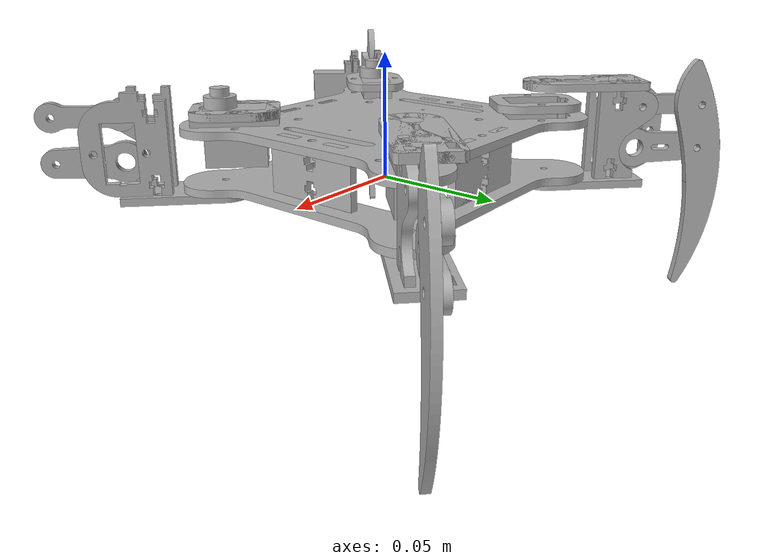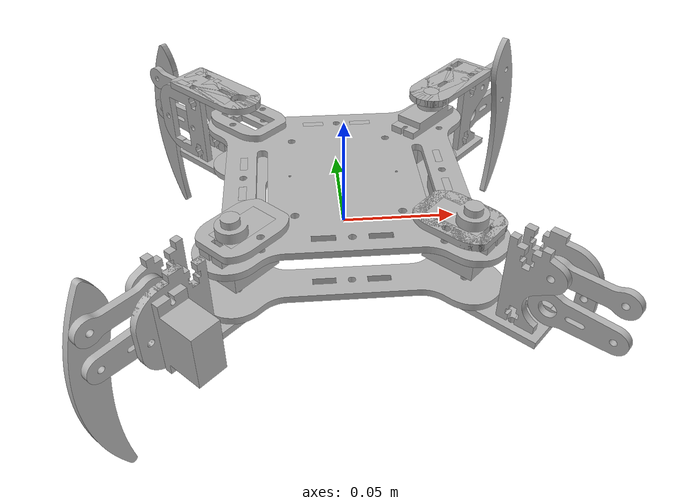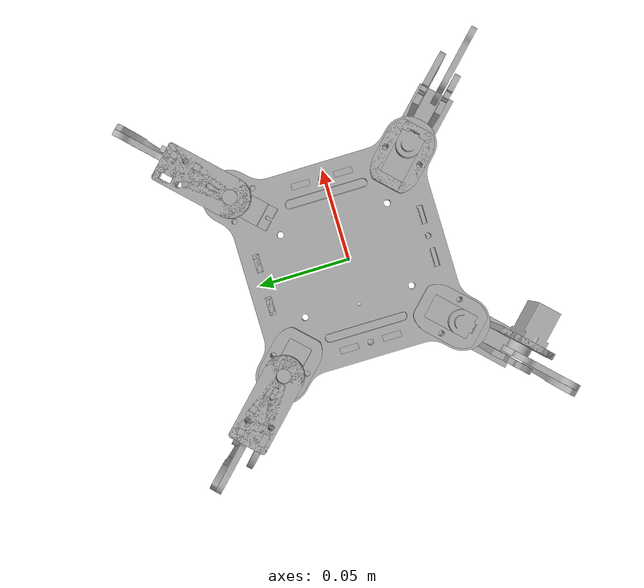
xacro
<?xml version="1.0" ?>
<robot name="quadruped" xmlns:xacro="http://www.ros.org/wiki/xacro">

<xacro:include filename="$(find quadruped_description)/urdf/materials.xacro" />
<xacro:include filename="$(find quadruped_description)/urdf/quadruped.trans" />
<xacro:include filename="$(find quadruped_description)/urdf/quadruped.gazebo" />

<link name="base_link">
  <inertial>
    <origin rpy="0 0 0" xyz="9.059146598001685e-07 0.0015934023756066099 0.049996155576494214"/>
    <mass value="0.1660035395213305"/>
    <inertia ixx="0.000257" ixy="0.0" ixz="0.0" iyy="0.000257" iyz="-0.0" izz="0.000514"/>
  </inertial>
  <visual>
    <origin rpy="0 0 0" xyz="0 0 0"/>
    <geometry>
      <mesh filename="package://quadruped_description/meshes/base_link.stl" scale="0.001 0.001 0.001"/>
    </geometry>
    <material name="silver"/>
  </visual>
  <collision>
    <origin rpy="0 0 0" xyz="0 0 0"/>
    <geometry>
      <mesh filename="package://quadruped_description/meshes/base_link.stl" scale="0.001 0.001 0.001"/>
    </geometry>
  </collision>
</link>

<link name="body_spacer_v1_1">
  <inertial>
    <origin rpy="0 0 0" xyz="-2.3037127760971997e-17 3.4442350579921843e-07 0.0019124056524901095"/>
    <mass value="0.01987438429408557"/>
    <inertia ixx="1e-06" ixy="0.0" ixz="0.0" iyy="4e-06" iyz="0.0" izz="3e-06"/>
  </inertial>
  <visual>
    <origin rpy="0 0 0" xyz="0.0 0.041434 -0.05924"/>
    <geometry>
      <mesh filename="package://quadruped_description/meshes/body_spacer_v1_1.stl" scale="0.001 0.001 0.001"/>
    </geometry>
    <material name="silver"/>
  </visual>
  <collision>
    <origin rpy="0 0 0" xyz="0.0 0.041434 -0.05924"/>
    <geometry>
      <mesh filename="package://quadruped_description/meshes/body_spacer_v1_1.stl" scale="0.001 0.001 0.001"/>
    </geometry>
  </collision>
</link>

<link name="body_spacer_v1_2">
  <inertial>
    <origin rpy="0 0 0" xyz="-1.762479051592436e-17 -1.555764942290372e-07 0.0019124056524901373"/>
    <mass value="0.01987438429408557"/>
    <inertia ixx="1e-06" ixy="0.0" ixz="0.0" iyy="4e-06" iyz="0.0" izz="3e-06"/>
  </inertial>
  <visual>
    <origin rpy="0 0 0" xyz="0.0 -0.044629 -0.05924"/>
    <geometry>
      <mesh filename="package://quadruped_description/meshes/body_spacer_v1_2.stl" scale="0.001 0.001 0.001"/>
    </geometry>
    <material name="silver"/>
  </visual>
  <collision>
    <origin rpy="0 0 0" xyz="0.0 -0.044629 -0.05924"/>
    <geometry>
      <mesh filename="package://quadruped_description/meshes/body_spacer_v1_2.stl" scale="0.001 0.001 0.001"/>
    </geometry>
  </collision>
</link>

<link name="body_spacer_v1_3">
  <inertial>
    <origin rpy="0 0 0" xyz="-2.500000000071889e-07 -4.055764942221315e-07 0.0019124056524901165"/>
    <mass value="0.01987438429408557"/>
    <inertia ixx="4e-06" ixy="0.0" ixz="-0.0" iyy="1e-06" iyz="-0.0" izz="3e-06"/>
  </inertial>
  <visual>
    <origin rpy="0 0 0" xyz="0.043031 -0.001598 -0.05924"/>
    <geometry>
      <mesh filename="package://quadruped_description/meshes/body_spacer_v1_3.stl" scale="0.001 0.001 0.001"/>
    </geometry>
    <material name="silver"/>
  </visual>
  <collision>
    <origin rpy="0 0 0" xyz="0.043031 -0.001598 -0.05924"/>
    <geometry>
      <mesh filename="package://quadruped_description/meshes/body_spacer_v1_3.stl" scale="0.001 0.001 0.001"/>
    </geometry>
  </collision>
</link>

<link name="body_spacer_v1_4">
  <inertial>
    <origin rpy="0 0 0" xyz="2.4999999997249445e-07 -4.0557649422690197e-07 0.0019124056524901165"/>
    <mass value="0.01987438429408557"/>
    <inertia ixx="4e-06" ixy="0.0" ixz="0.0" iyy="1e-06" iyz="-0.0" izz="3e-06"/>
  </inertial>
  <visual>
    <origin rpy="0 0 0" xyz="-0.043031 -0.001598 -0.05924"/>
    <geometry>
      <mesh filename="package://quadruped_description/meshes/body_spacer_v1_4.stl" scale="0.001 0.001 0.001"/>
    </geometry>
    <material name="silver"/>
  </visual>
  <collision>
    <origin rpy="0 0 0" xyz="-0.043031 -0.001598 -0.05924"/>
    <geometry>
      <mesh filename="package://quadruped_description/meshes/body_spacer_v1_4.stl" scale="0.001 0.001 0.001"/>
    </geometry>
  </collision>
</link>

<link name="body_top_plate_v1_1">
  <inertial>
    <origin rpy="0 0 0" xyz="-6.217287019304255e-06 -7.919011395336392e-07 -0.0015933444235057687"/>
    <mass value="0.2442521638475155"/>
    <inertia ixx="0.000246" ixy="-0.0" ixz="0.0" iyy="0.000236" iyz="-0.0" izz="0.000482"/>
  </inertial>
  <visual>
    <origin rpy="0 0 0" xyz="1e-05 -0.001603 -0.073902"/>
    <geometry>
      <mesh filename="package://quadruped_description/meshes/body_top_plate_v1_1.stl" scale="0.001 0.001 0.001"/>
    </geometry>
    <material name="silver"/>
  </visual>
  <collision>
    <origin rpy="0 0 0" xyz="1e-05 -0.001603 -0.073902"/>
    <geometry>
      <mesh filename="package://quadruped_description/meshes/body_top_plate_v1_1.stl" scale="0.001 0.001 0.001"/>
    </geometry>
  </collision>
</link>

<link name="servo_motor_v1_1">
  <inertial>
    <origin rpy="0 0 0" xyz="-0.0034453069163115357 -0.003444709272821242 -0.017291510897469234"/>
    <mass value="0.008039754705757893"/>
    <inertia ixx="1e-06" ixy="-0.0" ixz="-0.0" iyy="1e-06" iyz="-0.0" izz="1e-06"/>
  </inertial>
  <visual>
    <origin rpy="0 0 0" xyz="-0.045406 -0.047003 -0.088004"/>
    <geometry>
      <mesh filename="package://quadruped_description/meshes/servo_motor_v1_1.stl" scale="0.001 0.001 0.001"/>
    </geometry>
    <material name="silver"/>
  </visual>
  <collision>
    <origin rpy="0 0 0" xyz="-0.045406 -0.047003 -0.088004"/>
    <geometry>
      <mesh filename="package://quadruped_description/meshes/servo_motor_v1_1.stl" scale="0.001 0.001 0.001"/>
    </geometry>
  </collision>
</link>

<link name="servo_motor_v1_2">
  <inertial>
    <origin rpy="0 0 0" xyz="0.00344528207956777 0.00344474337177747 -0.017291510897469248"/>
    <mass value="0.008039754705757893"/>
    <inertia ixx="1e-06" ixy="-0.0" ixz="0.0" iyy="1e-06" iyz="0.0" izz="1e-06"/>
  </inertial>
  <visual>
    <origin rpy="0 0 0" xyz="0.045406 0.043805 -0.088004"/>
    <geometry>
      <mesh filename="package://quadruped_description/meshes/servo_motor_v1_2.stl" scale="0.001 0.001 0.001"/>
    </geometry>
    <material name="silver"/>
  </visual>
  <collision>
    <origin rpy="0 0 0" xyz="0.045406 0.043805 -0.088004"/>
    <geometry>
      <mesh filename="package://quadruped_description/meshes/servo_motor_v1_2.stl" scale="0.001 0.001 0.001"/>
    </geometry>
  </collision>
</link>

<link name="servo_motor_v1_3">
  <inertial>
    <origin rpy="0 0 0" xyz="-0.0034453067361639236 0.0034448982999804242 -0.01729151089746929"/>
    <mass value="0.008039754705757893"/>
    <inertia ixx="1e-06" ixy="0.0" ixz="-0.0" iyy="1e-06" iyz="0.0" izz="1e-06"/>
  </inertial>
  <visual>
    <origin rpy="0 0 0" xyz="-0.045406 0.043808 -0.088004"/>
    <geometry>
      <mesh filename="package://quadruped_description/meshes/servo_motor_v1_3.stl" scale="0.001 0.001 0.001"/>
    </geometry>
    <material name="silver"/>
  </visual>
  <collision>
    <origin rpy="0 0 0" xyz="-0.045406 0.043808 -0.088004"/>
    <geometry>
      <mesh filename="package://quadruped_description/meshes/servo_motor_v1_3.stl" scale="0.001 0.001 0.001"/>
    </geometry>
  </collision>
</link>

<link name="servo_motor_v1_4">
  <inertial>
    <origin rpy="0 0 0" xyz="0.003445281899420137 -0.0034447266622682077 -0.017291510897469248"/>
    <mass value="0.008039754705757893"/>
    <inertia ixx="1e-06" ixy="0.0" ixz="0.0" iyy="1e-06" iyz="-0.0" izz="1e-06"/>
  </inertial>
  <visual>
    <origin rpy="0 0 0" xyz="0.045406 -0.04688 -0.088004"/>
    <geometry>
      <mesh filename="package://quadruped_description/meshes/servo_motor_v1_4.stl" scale="0.001 0.001 0.001"/>
    </geometry>
    <material name="silver"/>
  </visual>
  <collision>
    <origin rpy="0 0 0" xyz="0.045406 -0.04688 -0.088004"/>
    <geometry>
      <mesh filename="package://quadruped_description/meshes/servo_motor_v1_4.stl" scale="0.001 0.001 0.001"/>
    </geometry>
  </collision>
</link>

<link name="leg_servo_retainer_v1_1">
  <inertial>
    <origin rpy="0 0 0" xyz="0.007924108380789864 0.007923419580222718 -3.4442350579921843e-07"/>
    <mass value="0.011735752466802122"/>
    <inertia ixx="1e-06" ixy="-0.0" ixz="-0.0" iyy="1e-06" iyz="0.0" izz="2e-06"/>
  </inertial>
  <visual>
    <origin rpy="0 0 0" xyz="-0.033325 -0.034922 -0.078684"/>
    <geometry>
      <mesh filename="package://quadruped_description/meshes/leg_servo_retainer_v1_1.stl" scale="0.001 0.001 0.001"/>
    </geometry>
    <material name="silver"/>
  </visual>
  <collision>
    <origin rpy="0 0 0" xyz="-0.033325 -0.034922 -0.078684"/>
    <geometry>
      <mesh filename="package://quadruped_description/meshes/leg_servo_retainer_v1_1.stl" scale="0.001 0.001 0.001"/>
    </geometry>
  </collision>
</link>

<link name="leg_servo_retainer_v1_2">
  <inertial>
    <origin rpy="0 0 0" xyz="-0.007924133217533623 -0.007923385481266532 -3.444235058408518e-07"/>
    <mass value="0.011735752466802122"/>
    <inertia ixx="1e-06" ixy="-0.0" ixz="0.0" iyy="1e-06" iyz="-0.0" izz="2e-06"/>
  </inertial>
  <visual>
    <origin rpy="0 0 0" xyz="0.033325 0.031724 -0.078684"/>
    <geometry>
      <mesh filename="package://quadruped_description/meshes/leg_servo_retainer_v1_2.stl" scale="0.001 0.001 0.001"/>
    </geometry>
    <material name="silver"/>
  </visual>
  <collision>
    <origin rpy="0 0 0" xyz="0.033325 0.031724 -0.078684"/>
    <geometry>
      <mesh filename="package://quadruped_description/meshes/leg_servo_retainer_v1_2.stl" scale="0.001 0.001 0.001"/>
    </geometry>
  </collision>
</link>

<link name="leg_servo_retainer_v1_3">
  <inertial>
    <origin rpy="0 0 0" xyz="0.007922822116880023 -0.00792451699712099 -3.444235058547296e-07"/>
    <mass value="0.011735752466802122"/>
    <inertia ixx="1e-06" ixy="0.0" ixz="0.0" iyy="1e-06" iyz="-0.0" izz="2e-06"/>
  </inertial>
  <visual>
    <origin rpy="0 0 0" xyz="-0.033325 0.031727 -0.078684"/>
    <geometry>
      <mesh filename="package://quadruped_description/meshes/leg_servo_retainer_v1_3.stl" scale="0.001 0.001 0.001"/>
    </geometry>
    <material name="silver"/>
  </visual>
  <collision>
    <origin rpy="0 0 0" xyz="-0.033325 0.031727 -0.078684"/>
    <geometry>
      <mesh filename="package://quadruped_description/meshes/leg_servo_retainer_v1_3.stl" scale="0.001 0.001 0.001"/>
    </geometry>
  </collision>
</link>

<link name="leg_servo_retainer_v1_4">
  <inertial>
    <origin rpy="0 0 0" xyz="-0.007922846953623795 0.007924688634833157 -3.444235058130962e-07"/>
    <mass value="0.011735752466802122"/>
    <inertia ixx="1e-06" ixy="0.0" ixz="0.0" iyy="1e-06" iyz="0.0" izz="2e-06"/>
  </inertial>
  <visual>
    <origin rpy="0 0 0" xyz="0.033325 -0.034799 -0.078684"/>
    <geometry>
      <mesh filename="package://quadruped_description/meshes/leg_servo_retainer_v1_4.stl" scale="0.001 0.001 0.001"/>
    </geometry>
    <material name="silver"/>
  </visual>
  <collision>
    <origin rpy="0 0 0" xyz="0.033325 -0.034799 -0.078684"/>
    <geometry>
      <mesh filename="package://quadruped_description/meshes/leg_servo_retainer_v1_4.stl" scale="0.001 0.001 0.001"/>
    </geometry>
  </collision>
</link>

<link name="leg_top_pivot_plate_v1_1">
  <inertial>
    <origin rpy="0 0 0" xyz="0.010648424399168653 0.010577698071700968 -0.0015938444235058108"/>
    <mass value="0.020723046160568363"/>
    <inertia ixx="2e-06" ixy="-1e-06" ixz="-0.0" iyy="2e-06" iyz="-0.0" izz="4e-06"/>
  </inertial>
  <visual>
    <origin rpy="0 0 0" xyz="-0.045406 -0.047003 -0.088004"/>
    <geometry>
      <mesh filename="package://quadruped_description/meshes/leg_top_pivot_plate_v1_1.stl" scale="0.001 0.001 0.001"/>
    </geometry>
    <material name="silver"/>
  </visual>
  <collision>
    <origin rpy="0 0 0" xyz="-0.045406 -0.047003 -0.088004"/>
    <geometry>
      <mesh filename="package://quadruped_description/meshes/leg_top_pivot_plate_v1_1.stl" scale="0.001 0.001 0.001"/>
    </geometry>
  </collision>
</link>

<link name="leg_top_pivot_plate_v1_2">
  <inertial>
    <origin rpy="0 0 0" xyz="-0.010648449235912537 -0.010577663972744698 -0.0015938444235058524"/>
    <mass value="0.020723046160568363"/>
    <inertia ixx="2e-06" ixy="-1e-06" ixz="-0.0" iyy="2e-06" iyz="-0.0" izz="4e-06"/>
  </inertial>
  <visual>
    <origin rpy="0 0 0" xyz="0.045406 0.043805 -0.088004"/>
    <geometry>
      <mesh filename="package://quadruped_description/meshes/leg_top_pivot_plate_v1_2.stl" scale="0.001 0.001 0.001"/>
    </geometry>
    <material name="silver"/>
  </visual>
  <collision>
    <origin rpy="0 0 0" xyz="0.045406 0.043805 -0.088004"/>
    <geometry>
      <mesh filename="package://quadruped_description/meshes/leg_top_pivot_plate_v1_2.stl" scale="0.001 0.001 0.001"/>
    </geometry>
  </collision>
</link>

<link name="leg_top_pivot_plate_v1_3">
  <inertial>
    <origin rpy="0 0 0" xyz="0.010577100608358335 -0.010648833015499813 -0.001593844423505894"/>
    <mass value="0.020723046160568363"/>
    <inertia ixx="2e-06" ixy="1e-06" ixz="0.0" iyy="2e-06" iyz="0.0" izz="4e-06"/>
  </inertial>
  <visual>
    <origin rpy="0 0 0" xyz="-0.045406 0.043808 -0.088004"/>
    <geometry>
      <mesh filename="package://quadruped_description/meshes/leg_top_pivot_plate_v1_3.stl" scale="0.001 0.001 0.001"/>
    </geometry>
    <material name="silver"/>
  </visual>
  <collision>
    <origin rpy="0 0 0" xyz="-0.045406 0.043808 -0.088004"/>
    <geometry>
      <mesh filename="package://quadruped_description/meshes/leg_top_pivot_plate_v1_3.stl" scale="0.001 0.001 0.001"/>
    </geometry>
  </collision>
</link>

<link name="leg_top_pivot_plate_v1_4">
  <inertial>
    <origin rpy="0 0 0" xyz="-0.010577125445102108 0.010649004653212023 -0.0015938444235058247"/>
    <mass value="0.020723046160568363"/>
    <inertia ixx="2e-06" ixy="1e-06" ixz="0.0" iyy="2e-06" iyz="0.0" izz="4e-06"/>
  </inertial>
  <visual>
    <origin rpy="0 0 0" xyz="0.045406 -0.04688 -0.088004"/>
    <geometry>
      <mesh filename="package://quadruped_description/meshes/leg_top_pivot_plate_v1_4.stl" scale="0.001 0.001 0.001"/>
    </geometry>
    <material name="silver"/>
  </visual>
  <collision>
    <origin rpy="0 0 0" xyz="0.045406 -0.04688 -0.088004"/>
    <geometry>
      <mesh filename="package://quadruped_description/meshes/leg_top_pivot_plate_v1_4.stl" scale="0.001 0.001 0.001"/>
    </geometry>
  </collision>
</link>

<link name="leg_servo_mount_v1_1">
  <inertial>
    <origin rpy="0 0 0" xyz="0.006427091482037052 0.006426612462751641 -0.009351515125044133"/>
    <mass value="0.018978192167657257"/>
    <inertia ixx="3e-06" ixy="-1e-06" ixz="-0.0" iyy="3e-06" iyz="-0.0" izz="2e-06"/>
  </inertial>
  <visual>
    <origin rpy="0 0 0" xyz="-0.058289 -0.069083 -0.076529"/>
    <geometry>
      <mesh filename="package://quadruped_description/meshes/leg_servo_mount_v1_1.stl" scale="0.001 0.001 0.001"/>
    </geometry>
    <material name="silver"/>
  </visual>
  <collision>
    <origin rpy="0 0 0" xyz="-0.058289 -0.069083 -0.076529"/>
    <geometry>
      <mesh filename="package://quadruped_description/meshes/leg_servo_mount_v1_1.stl" scale="0.001 0.001 0.001"/>
    </geometry>
  </collision>
</link>

<link name="leg_servo_mount_v1_2">
  <inertial>
    <origin rpy="0 0 0" xyz="-0.006427116318780936 -0.006426578363795371 -0.009351515125044202"/>
    <mass value="0.018978192167657257"/>
    <inertia ixx="3e-06" ixy="-1e-06" ixz="0.0" iyy="3e-06" iyz="0.0" izz="2e-06"/>
  </inertial>
  <visual>
    <origin rpy="0 0 0" xyz="0.058289 0.065885 -0.076529"/>
    <geometry>
      <mesh filename="package://quadruped_description/meshes/leg_servo_mount_v1_2.stl" scale="0.001 0.001 0.001"/>
    </geometry>
    <material name="silver"/>
  </visual>
  <collision>
    <origin rpy="0 0 0" xyz="0.058289 0.065885 -0.076529"/>
    <geometry>
      <mesh filename="package://quadruped_description/meshes/leg_servo_mount_v1_2.stl" scale="0.001 0.001 0.001"/>
    </geometry>
  </collision>
</link>

<link name="leg_servo_mount_v1_3">
  <inertial>
    <origin rpy="0 0 0" xyz="0.006427014999408981 -0.006426500098368142 -0.009351515125044257"/>
    <mass value="0.018978192167657257"/>
    <inertia ixx="3e-06" ixy="1e-06" ixz="-0.0" iyy="3e-06" iyz="0.0" izz="2e-06"/>
  </inertial>
  <visual>
    <origin rpy="0 0 0" xyz="-0.067485 0.056692 -0.076529"/>
    <geometry>
      <mesh filename="package://quadruped_description/meshes/leg_servo_mount_v1_3.stl" scale="0.001 0.001 0.001"/>
    </geometry>
    <material name="silver"/>
  </visual>
  <collision>
    <origin rpy="0 0 0" xyz="-0.067485 0.056692 -0.076529"/>
    <geometry>
      <mesh filename="package://quadruped_description/meshes/leg_servo_mount_v1_3.stl" scale="0.001 0.001 0.001"/>
    </geometry>
  </collision>
</link>

<link name="leg_servo_mount_v1_4">
  <inertial>
    <origin rpy="0 0 0" xyz="-0.0064270398361530034 0.006426671736080497 -0.009351515125044133"/>
    <mass value="0.018978192167657257"/>
    <inertia ixx="3e-06" ixy="1e-06" ixz="0.0" iyy="3e-06" iyz="-0.0" izz="2e-06"/>
  </inertial>
  <visual>
    <origin rpy="0 0 0" xyz="0.067485 -0.059764 -0.076529"/>
    <geometry>
      <mesh filename="package://quadruped_description/meshes/leg_servo_mount_v1_4.stl" scale="0.001 0.001 0.001"/>
    </geometry>
    <material name="silver"/>
  </visual>
  <collision>
    <origin rpy="0 0 0" xyz="0.067485 -0.059764 -0.076529"/>
    <geometry>
      <mesh filename="package://quadruped_description/meshes/leg_servo_mount_v1_4.stl" scale="0.001 0.001 0.001"/>
    </geometry>
  </collision>
</link>

<link name="servo_motor_v1_5">
  <inertial>
    <origin rpy="0 0 0" xyz="-0.005636344543875599 0.005636108172251839 -0.012212864453551214"/>
    <mass value="0.008039754705757893"/>
    <inertia ixx="1e-06" ixy="0.0" ixz="0.0" iyy="1e-06" iyz="-0.0" izz="1e-06"/>
  </inertial>
  <visual>
    <origin rpy="0 0 0" xyz="-0.066908 -0.077702 -0.076962"/>
    <geometry>
      <mesh filename="package://quadruped_description/meshes/servo_motor_v1_5.stl" scale="0.001 0.001 0.001"/>
    </geometry>
    <material name="silver"/>
  </visual>
  <collision>
    <origin rpy="0 0 0" xyz="-0.066908 -0.077702 -0.076962"/>
    <geometry>
      <mesh filename="package://quadruped_description/meshes/servo_motor_v1_5.stl" scale="0.001 0.001 0.001"/>
    </geometry>
  </collision>
</link>

<link name="servo_motor_v1_6">
  <inertial>
    <origin rpy="0 0 0" xyz="0.0056363197071315554 -0.005636074073295541 -0.012212864453551311"/>
    <mass value="0.008039754705757893"/>
    <inertia ixx="1e-06" ixy="0.0" ixz="-0.0" iyy="1e-06" iyz="0.0" izz="1e-06"/>
  </inertial>
  <visual>
    <origin rpy="0 0 0" xyz="0.066908 0.074504 -0.076962"/>
    <geometry>
      <mesh filename="package://quadruped_description/meshes/servo_motor_v1_6.stl" scale="0.001 0.001 0.001"/>
    </geometry>
    <material name="silver"/>
  </visual>
  <collision>
    <origin rpy="0 0 0" xyz="0.066908 0.074504 -0.076962"/>
    <geometry>
      <mesh filename="package://quadruped_description/meshes/servo_motor_v1_6.stl" scale="0.001 0.001 0.001"/>
    </geometry>
  </collision>
</link>

<link name="servo_motor_v1_7">
  <inertial>
    <origin rpy="0 0 0" xyz="0.00563651070890904 0.005636935927544447 -0.012212864453551353"/>
    <mass value="0.008039754705757893"/>
    <inertia ixx="1e-06" ixy="-0.0" ixz="-0.0" iyy="1e-06" iyz="-0.0" izz="1e-06"/>
  </inertial>
  <visual>
    <origin rpy="0 0 0" xyz="-0.076104 0.065311 -0.076962"/>
    <geometry>
      <mesh filename="package://quadruped_description/meshes/servo_motor_v1_7.stl" scale="0.001 0.001 0.001"/>
    </geometry>
    <material name="silver"/>
  </visual>
  <collision>
    <origin rpy="0 0 0" xyz="-0.076104 0.065311 -0.076962"/>
    <geometry>
      <mesh filename="package://quadruped_description/meshes/servo_motor_v1_7.stl" scale="0.001 0.001 0.001"/>
    </geometry>
  </collision>
</link>

<link name="servo_motor_v1_8">
  <inertial>
    <origin rpy="0 0 0" xyz="-0.005636535545653271 -0.005636764289832105 -0.012212864453551117"/>
    <mass value="0.008039754705757893"/>
    <inertia ixx="1e-06" ixy="-0.0" ixz="0.0" iyy="1e-06" iyz="0.0" izz="1e-06"/>
  </inertial>
  <visual>
    <origin rpy="0 0 0" xyz="0.076104 -0.068383 -0.076962"/>
    <geometry>
      <mesh filename="package://quadruped_description/meshes/servo_motor_v1_8.stl" scale="0.001 0.001 0.001"/>
    </geometry>
    <material name="silver"/>
  </visual>
  <collision>
    <origin rpy="0 0 0" xyz="0.076104 -0.068383 -0.076962"/>
    <geometry>
      <mesh filename="package://quadruped_description/meshes/servo_motor_v1_8.stl" scale="0.001 0.001 0.001"/>
    </geometry>
  </collision>
</link>

<link name="leg_servo_arm_v1_1">
  <inertial>
    <origin rpy="0 0 0" xyz="0.006854663369280534 0.009109263260319467 4.051724359702136e-07"/>
    <mass value="0.01005919143698447"/>
    <inertia ixx="1e-06" ixy="-1e-06" ixz="0.0" iyy="1e-06" iyz="0.0" izz="1e-06"/>
  </inertial>
  <visual>
    <origin rpy="0 0 0" xyz="-0.073499 -0.071111 -0.059877"/>
    <geometry>
      <mesh filename="package://quadruped_description/meshes/leg_servo_arm_v1_1.stl" scale="0.001 0.001 0.001"/>
    </geometry>
    <material name="silver"/>
  </visual>
  <collision>
    <origin rpy="0 0 0" xyz="-0.073499 -0.071111 -0.059877"/>
    <geometry>
      <mesh filename="package://quadruped_description/meshes/leg_servo_arm_v1_1.stl" scale="0.001 0.001 0.001"/>
    </geometry>
  </collision>
</link>

<link name="leg_servo_arm_v1_2">
  <inertial>
    <origin rpy="0 0 0" xyz="-0.006854688206024598 -0.009109229161363128 4.051727157394769e-07"/>
    <mass value="0.01005919143698447"/>
    <inertia ixx="1e-06" ixy="-1e-06" ixz="0.0" iyy="1e-06" iyz="0.0" izz="1e-06"/>
  </inertial>
  <visual>
    <origin rpy="0 0 0" xyz="0.073499 0.067913 -0.059877"/>
    <geometry>
      <mesh filename="package://quadruped_description/meshes/leg_servo_arm_v1_2.stl" scale="0.001 0.001 0.001"/>
    </geometry>
    <material name="silver"/>
  </visual>
  <collision>
    <origin rpy="0 0 0" xyz="0.073499 0.067913 -0.059877"/>
    <geometry>
      <mesh filename="package://quadruped_description/meshes/leg_servo_arm_v1_2.stl" scale="0.001 0.001 0.001"/>
    </geometry>
  </collision>
</link>

<link name="leg_servo_arm_v1_3">
  <inertial>
    <origin rpy="0 0 0" xyz="0.009108665796976917 -0.0068550719856114994 4.051727155868212e-07"/>
    <mass value="0.01005919143698447"/>
    <inertia ixx="1e-06" ixy="1e-06" ixz="-0.0" iyy="1e-06" iyz="0.0" izz="1e-06"/>
  </inertial>
  <visual>
    <origin rpy="0 0 0" xyz="-0.069514 0.071901 -0.059877"/>
    <geometry>
      <mesh filename="package://quadruped_description/meshes/leg_servo_arm_v1_3.stl" scale="0.001 0.001 0.001"/>
    </geometry>
    <material name="silver"/>
  </visual>
  <collision>
    <origin rpy="0 0 0" xyz="-0.069514 0.071901 -0.059877"/>
    <geometry>
      <mesh filename="package://quadruped_description/meshes/leg_servo_arm_v1_3.stl" scale="0.001 0.001 0.001"/>
    </geometry>
  </collision>
</link>

<link name="leg_servo_arm_v1_4">
  <inertial>
    <origin rpy="0 0 0" xyz="-0.00910869063372105 0.006855243623324056 4.0517243608817477e-07"/>
    <mass value="0.01005919143698447"/>
    <inertia ixx="1e-06" ixy="1e-06" ixz="-0.0" iyy="1e-06" iyz="0.0" izz="1e-06"/>
  </inertial>
  <visual>
    <origin rpy="0 0 0" xyz="0.069514 -0.074973 -0.059877"/>
    <geometry>
      <mesh filename="package://quadruped_description/meshes/leg_servo_arm_v1_4.stl" scale="0.001 0.001 0.001"/>
    </geometry>
    <material name="silver"/>
  </visual>
  <collision>
    <origin rpy="0 0 0" xyz="0.069514 -0.074973 -0.059877"/>
    <geometry>
      <mesh filename="package://quadruped_description/meshes/leg_servo_arm_v1_4.stl" scale="0.001 0.001 0.001"/>
    </geometry>
  </collision>
</link>

<link name="leg_rev_v1_1">
  <inertial>
    <origin rpy="0 0 0" xyz="0.0017515473433343115 -0.0003754399481460391 -0.0070623052238462936"/>
    <mass value="0.02607369115545735"/>
    <inertia ixx="1.5e-05" ixy="-0.0" ixz="1e-06" iyy="1.5e-05" iyz="1e-06" izz="1e-06"/>
  </inertial>
  <visual>
    <origin rpy="0 0 0" xyz="-0.09153 -0.089142 -0.059877"/>
    <geometry>
      <mesh filename="package://quadruped_description/meshes/leg_rev_v1_1.stl" scale="0.001 0.001 0.001"/>
    </geometry>
    <material name="silver"/>
  </visual>
  <collision>
    <origin rpy="0 0 0" xyz="-0.09153 -0.089142 -0.059877"/>
    <geometry>
      <mesh filename="package://quadruped_description/meshes/leg_rev_v1_1.stl" scale="0.001 0.001 0.001"/>
    </geometry>
  </collision>
</link>

<link name="leg_rev_v1_2">
  <inertial>
    <origin rpy="0 0 0" xyz="-0.0017515721800784034 0.00037547404710240595 -0.0070623052238461825"/>
    <mass value="0.02607369115545735"/>
    <inertia ixx="1.5e-05" ixy="-0.0" ixz="-1e-06" iyy="1.5e-05" iyz="-1e-06" izz="1e-06"/>
  </inertial>
  <visual>
    <origin rpy="0 0 0" xyz="0.09153 0.085944 -0.059877"/>
    <geometry>
      <mesh filename="package://quadruped_description/meshes/leg_rev_v1_2.stl" scale="0.001 0.001 0.001"/>
    </geometry>
    <material name="silver"/>
  </visual>
  <collision>
    <origin rpy="0 0 0" xyz="0.09153 0.085944 -0.059877"/>
    <geometry>
      <mesh filename="package://quadruped_description/meshes/leg_rev_v1_2.stl" scale="0.001 0.001 0.001"/>
    </geometry>
  </collision>
</link>

<link name="leg_rev_v1_3">
  <inertial>
    <origin rpy="0 0 0" xyz="-0.00037603741148850567 -0.001751955959665083 -0.0070623052238464185"/>
    <mass value="0.02607369115545735"/>
    <inertia ixx="1.5e-05" ixy="0.0" ixz="1e-06" iyy="1.5e-05" iyz="-1e-06" izz="1e-06"/>
  </inertial>
  <visual>
    <origin rpy="0 0 0" xyz="-0.087545 0.089932 -0.059877"/>
    <geometry>
      <mesh filename="package://quadruped_description/meshes/leg_rev_v1_3.stl" scale="0.001 0.001 0.001"/>
    </geometry>
    <material name="silver"/>
  </visual>
  <collision>
    <origin rpy="0 0 0" xyz="-0.087545 0.089932 -0.059877"/>
    <geometry>
      <mesh filename="package://quadruped_description/meshes/leg_rev_v1_3.stl" scale="0.001 0.001 0.001"/>
    </geometry>
  </collision>
</link>

<link name="leg_rev_v1_4">
  <inertial>
    <origin rpy="0 0 0" xyz="0.0003760125747445664 0.0017521275973778477 -0.007062305223845974"/>
    <mass value="0.02607369115545735"/>
    <inertia ixx="1.5e-05" ixy="0.0" ixz="-1e-06" iyy="1.5e-05" iyz="1e-06" izz="1e-06"/>
  </inertial>
  <visual>
    <origin rpy="0 0 0" xyz="0.087545 -0.093004 -0.059877"/>
    <geometry>
      <mesh filename="package://quadruped_description/meshes/leg_rev_v1_4.stl" scale="0.001 0.001 0.001"/>
    </geometry>
    <material name="silver"/>
  </visual>
  <collision>
    <origin rpy="0 0 0" xyz="0.087545 -0.093004 -0.059877"/>
    <geometry>
      <mesh filename="package://quadruped_description/meshes/leg_rev_v1_4.stl" scale="0.001 0.001 0.001"/>
    </geometry>
  </collision>
</link>

<link name="bottom_pivot_plate_v1_1">
  <inertial>
    <origin rpy="0 0 0" xyz="0.01000675765330758 0.010047118194641713 -0.0015933444235057687"/>
    <mass value="0.02183354723813213"/>
    <inertia ixx="2e-06" ixy="-2e-06" ixz="-0.0" iyy="2e-06" iyz="-0.0" izz="5e-06"/>
  </inertial>
  <visual>
    <origin rpy="0 0 0" xyz="-0.045406 -0.047003 -0.048402"/>
    <geometry>
      <mesh filename="package://quadruped_description/meshes/bottom_pivot_plate_v1_1.stl" scale="0.001 0.001 0.001"/>
    </geometry>
    <material name="silver"/>
  </visual>
  <collision>
    <origin rpy="0 0 0" xyz="-0.045406 -0.047003 -0.048402"/>
    <geometry>
      <mesh filename="package://quadruped_description/meshes/bottom_pivot_plate_v1_1.stl" scale="0.001 0.001 0.001"/>
    </geometry>
  </collision>
</link>

<link name="bottom_pivot_plate_v1_2">
  <inertial>
    <origin rpy="0 0 0" xyz="-0.010006782490051352 -0.010047084095685513 -0.0015933444235059352"/>
    <mass value="0.02183354723813213"/>
    <inertia ixx="2e-06" ixy="-2e-06" ixz="-0.0" iyy="2e-06" iyz="-0.0" izz="5e-06"/>
  </inertial>
  <visual>
    <origin rpy="0 0 0" xyz="0.045406 0.043805 -0.048402"/>
    <geometry>
      <mesh filename="package://quadruped_description/meshes/bottom_pivot_plate_v1_2.stl" scale="0.001 0.001 0.001"/>
    </geometry>
    <material name="silver"/>
  </visual>
  <collision>
    <origin rpy="0 0 0" xyz="0.045406 0.043805 -0.048402"/>
    <geometry>
      <mesh filename="package://quadruped_description/meshes/bottom_pivot_plate_v1_2.stl" scale="0.001 0.001 0.001"/>
    </geometry>
  </collision>
</link>

<link name="bottom_pivot_plate_v1_3">
  <inertial>
    <origin rpy="0 0 0" xyz="0.010046520731299052 -0.01000716626963865 -0.0015933444235056785"/>
    <mass value="0.02183354723813213"/>
    <inertia ixx="2e-06" ixy="2e-06" ixz="-0.0" iyy="2e-06" iyz="0.0" izz="5e-06"/>
  </inertial>
  <visual>
    <origin rpy="0 0 0" xyz="-0.045406 0.043808 -0.048402"/>
    <geometry>
      <mesh filename="package://quadruped_description/meshes/bottom_pivot_plate_v1_3.stl" scale="0.001 0.001 0.001"/>
    </geometry>
    <material name="silver"/>
  </visual>
  <collision>
    <origin rpy="0 0 0" xyz="-0.045406 0.043808 -0.048402"/>
    <geometry>
      <mesh filename="package://quadruped_description/meshes/bottom_pivot_plate_v1_3.stl" scale="0.001 0.001 0.001"/>
    </geometry>
  </collision>
</link>

<link name="bottom_pivot_plate_v1_4">
  <inertial>
    <origin rpy="0 0 0" xyz="-0.010046545568043012 0.010007337907350838 -0.0015933444235043462"/>
    <mass value="0.02183354723813213"/>
    <inertia ixx="2e-06" ixy="2e-06" ixz="0.0" iyy="2e-06" iyz="-0.0" izz="5e-06"/>
  </inertial>
  <visual>
    <origin rpy="0 0 0" xyz="0.045406 -0.04688 -0.048402"/>
    <geometry>
      <mesh filename="package://quadruped_description/meshes/bottom_pivot_plate_v1_4.stl" scale="0.001 0.001 0.001"/>
    </geometry>
    <material name="silver"/>
  </visual>
  <collision>
    <origin rpy="0 0 0" xyz="0.045406 -0.04688 -0.048402"/>
    <geometry>
      <mesh filename="package://quadruped_description/meshes/bottom_pivot_plate_v1_4.stl" scale="0.001 0.001 0.001"/>
    </geometry>
  </collision>
</link>

<link name="leg_parallel_linkage_v1_1">
  <inertial>
    <origin rpy="0 0 0" xyz="-0.01014265742637048 -0.007889057535331243 -5.5744720088138355e-05"/>
    <mass value="0.00766074441602388"/>
    <inertia ixx="0.0" ixy="-0.0" ixz="-0.0" iyy="0.0" iyz="-0.0" izz="1e-06"/>
  </inertial>
  <visual>
    <origin rpy="0 0 0" xyz="-0.09153 -0.089143 -0.077727"/>
    <geometry>
      <mesh filename="package://quadruped_description/meshes/leg_parallel_linkage_v1_1.stl" scale="0.001 0.001 0.001"/>
    </geometry>
    <material name="silver"/>
  </visual>
  <collision>
    <origin rpy="0 0 0" xyz="-0.09153 -0.089143 -0.077727"/>
    <geometry>
      <mesh filename="package://quadruped_description/meshes/leg_parallel_linkage_v1_1.stl" scale="0.001 0.001 0.001"/>
    </geometry>
  </collision>
</link>

<link name="leg_parallel_plate_v1_1">
  <inertial>
    <origin rpy="0 0 0" xyz="-0.004995391768741642 -0.007248720766343711 -0.008862222322955887"/>
    <mass value="0.014417433544657016"/>
    <inertia ixx="2e-06" ixy="-0.0" ixz="-0.0" iyy="2e-06" iyz="-0.0" izz="1e-06"/>
  </inertial>
  <visual>
    <origin rpy="0 0 0" xyz="-0.074112 -0.070498 -0.077616"/>
    <geometry>
      <mesh filename="package://quadruped_description/meshes/leg_parallel_plate_v1_1.stl" scale="0.001 0.001 0.001"/>
    </geometry>
    <material name="silver"/>
  </visual>
  <collision>
    <origin rpy="0 0 0" xyz="-0.074112 -0.070498 -0.077616"/>
    <geometry>
      <mesh filename="package://quadruped_description/meshes/leg_parallel_plate_v1_1.stl" scale="0.001 0.001 0.001"/>
    </geometry>
  </collision>
</link>

<link name="leg_parallel_linkage_v1_2">
  <inertial>
    <origin rpy="0 0 0" xyz="0.010142632589629483 0.007888091634290925 -5.5744719077946425e-05"/>
    <mass value="0.00766074441602388"/>
    <inertia ixx="0.0" ixy="-0.0" ixz="0.0" iyy="0.0" iyz="0.0" izz="1e-06"/>
  </inertial>
  <visual>
    <origin rpy="0 0 0" xyz="0.09153 0.085944 -0.077727"/>
    <geometry>
      <mesh filename="package://quadruped_description/meshes/leg_parallel_linkage_v1_2.stl" scale="0.001 0.001 0.001"/>
    </geometry>
    <material name="silver"/>
  </visual>
  <collision>
    <origin rpy="0 0 0" xyz="0.09153 0.085944 -0.077727"/>
    <geometry>
      <mesh filename="package://quadruped_description/meshes/leg_parallel_linkage_v1_2.stl" scale="0.001 0.001 0.001"/>
    </geometry>
  </collision>
</link>

<link name="leg_parallel_plate_v1_2">
  <inertial>
    <origin rpy="0 0 0" xyz="0.004995366931997147 0.007248754865300626 -0.008862222322955901"/>
    <mass value="0.014417433544657016"/>
    <inertia ixx="2e-06" ixy="-0.0" ixz="0.0" iyy="2e-06" iyz="0.0" izz="1e-06"/>
  </inertial>
  <visual>
    <origin rpy="0 0 0" xyz="0.074112 0.0673 -0.077616"/>
    <geometry>
      <mesh filename="package://quadruped_description/meshes/leg_parallel_plate_v1_2.stl" scale="0.001 0.001 0.001"/>
    </geometry>
    <material name="silver"/>
  </visual>
  <collision>
    <origin rpy="0 0 0" xyz="0.074112 0.0673 -0.077616"/>
    <geometry>
      <mesh filename="package://quadruped_description/meshes/leg_parallel_plate_v1_2.stl" scale="0.001 0.001 0.001"/>
    </geometry>
  </collision>
</link>

<link name="leg_parallel_linkage_v1_3">
  <inertial>
    <origin rpy="0 0 0" xyz="-0.007888654998673209 0.010142248810039722 -5.574472008829101e-05"/>
    <mass value="0.00766074441602388"/>
    <inertia ixx="0.0" ixy="0.0" ixz="-0.0" iyy="0.0" iyz="0.0" izz="1e-06"/>
  </inertial>
  <visual>
    <origin rpy="0 0 0" xyz="-0.087545 0.089932 -0.077727"/>
    <geometry>
      <mesh filename="package://quadruped_description/meshes/leg_parallel_linkage_v1_3.stl" scale="0.001 0.001 0.001"/>
    </geometry>
    <material name="silver"/>
  </visual>
  <collision>
    <origin rpy="0 0 0" xyz="-0.087545 0.089932 -0.077727"/>
    <geometry>
      <mesh filename="package://quadruped_description/meshes/leg_parallel_linkage_v1_3.stl" scale="0.001 0.001 0.001"/>
    </geometry>
  </collision>
</link>

<link name="leg_parallel_plate_v1_3">
  <inertial>
    <origin rpy="0 0 0" xyz="-0.007249318229685893 0.004994983152410745 -0.008862222322955901"/>
    <mass value="0.014417433544657016"/>
    <inertia ixx="2e-06" ixy="0.0" ixz="-0.0" iyy="2e-06" iyz="0.0" izz="1e-06"/>
  </inertial>
  <visual>
    <origin rpy="0 0 0" xyz="-0.068901 0.072514 -0.077616"/>
    <geometry>
      <mesh filename="package://quadruped_description/meshes/leg_parallel_plate_v1_3.stl" scale="0.001 0.001 0.001"/>
    </geometry>
    <material name="silver"/>
  </visual>
  <collision>
    <origin rpy="0 0 0" xyz="-0.068901 0.072514 -0.077616"/>
    <geometry>
      <mesh filename="package://quadruped_description/meshes/leg_parallel_plate_v1_3.stl" scale="0.001 0.001 0.001"/>
    </geometry>
  </collision>
</link>

<link name="leg_parallel_linkage_v1_4">
  <inertial>
    <origin rpy="0 0 0" xyz="0.007888630161932808 -0.010142077172330191 -5.574471907779377e-05"/>
    <mass value="0.00766074441602388"/>
    <inertia ixx="0.0" ixy="0.0" ixz="0.0" iyy="0.0" iyz="-0.0" izz="1e-06"/>
  </inertial>
  <visual>
    <origin rpy="0 0 0" xyz="0.087545 -0.093004 -0.077727"/>
    <geometry>
      <mesh filename="package://quadruped_description/meshes/leg_parallel_linkage_v1_4.stl" scale="0.001 0.001 0.001"/>
    </geometry>
    <material name="silver"/>
  </visual>
  <collision>
    <origin rpy="0 0 0" xyz="0.087545 -0.093004 -0.077727"/>
    <geometry>
      <mesh filename="package://quadruped_description/meshes/leg_parallel_linkage_v1_4.stl" scale="0.001 0.001 0.001"/>
    </geometry>
  </collision>
</link>

<link name="leg_parallel_plate_v1_4">
  <inertial>
    <origin rpy="0 0 0" xyz="0.007249293392942328 -0.004994811514697772 -0.00886222232295586"/>
    <mass value="0.014417433544657016"/>
    <inertia ixx="2e-06" ixy="0.0" ixz="0.0" iyy="2e-06" iyz="-0.0" izz="1e-06"/>
  </inertial>
  <visual>
    <origin rpy="0 0 0" xyz="0.068901 -0.075586 -0.077616"/>
    <geometry>
      <mesh filename="package://quadruped_description/meshes/leg_parallel_plate_v1_4.stl" scale="0.001 0.001 0.001"/>
    </geometry>
    <material name="silver"/>
  </visual>
  <collision>
    <origin rpy="0 0 0" xyz="0.068901 -0.075586 -0.077616"/>
    <geometry>
      <mesh filename="package://quadruped_description/meshes/leg_parallel_plate_v1_4.stl" scale="0.001 0.001 0.001"/>
    </geometry>
  </collision>
</link>

<joint name="Rigid1" type="fixed">
  <origin rpy="0 0 0" xyz="0.0 -0.041434 0.05924"/>
  <parent link="base_link"/>
  <child link="body_spacer_v1_1"/>
</joint>

<joint name="Rigid2" type="fixed">
  <origin rpy="0 0 0" xyz="0.0 0.044629 0.05924"/>
  <parent link="base_link"/>
  <child link="body_spacer_v1_2"/>
</joint>

<joint name="Rigid3" type="fixed">
  <origin rpy="0 0 0" xyz="-0.043031 0.001598 0.05924"/>
  <parent link="base_link"/>
  <child link="body_spacer_v1_3"/>
</joint>

<joint name="Rigid4" type="fixed">
  <origin rpy="0 0 0" xyz="0.043031 0.001598 0.05924"/>
  <parent link="base_link"/>
  <child link="body_spacer_v1_4"/>
</joint>

<joint name="Rigid5" type="fixed">
  <origin rpy="0 0 0" xyz="-1e-05 0.001603 0.073902"/>
  <parent link="base_link"/>
  <child link="body_top_plate_v1_1"/>
</joint>

<joint name="Rigid6" type="fixed">
  <origin rpy="0 0 0" xyz="0.045406 0.047003 0.088004"/>
  <parent link="base_link"/>
  <child link="servo_motor_v1_1"/>
</joint>

<joint name="Rigid7" type="fixed">
  <origin rpy="0 0 0" xyz="-0.045406 -0.043805 0.088004"/>
  <parent link="base_link"/>
  <child link="servo_motor_v1_2"/>
</joint>

<joint name="Rigid8" type="fixed">
  <origin rpy="0 0 0" xyz="0.045406 -0.043808 0.088004"/>
  <parent link="base_link"/>
  <child link="servo_motor_v1_3"/>
</joint>

<joint name="Rigid9" type="fixed">
  <origin rpy="0 0 0" xyz="-0.045406 0.04688 0.088004"/>
  <parent link="base_link"/>
  <child link="servo_motor_v1_4"/>
</joint>

<joint name="Rigid10" type="fixed">
  <origin rpy="0 0 0" xyz="-0.012081 -0.012081 -0.00932"/>
  <parent link="servo_motor_v1_1"/>
  <child link="leg_servo_retainer_v1_1"/>
</joint>

<joint name="Rigid11" type="fixed">
  <origin rpy="0 0 0" xyz="0.012081 0.012081 -0.00932"/>
  <parent link="servo_motor_v1_2"/>
  <child link="leg_servo_retainer_v1_2"/>
</joint>

<joint name="Rigid12" type="fixed">
  <origin rpy="0 0 0" xyz="-0.012081 0.012081 -0.00932"/>
  <parent link="servo_motor_v1_3"/>
  <child link="leg_servo_retainer_v1_3"/>
</joint>

<joint name="Rigid13" type="fixed">
  <origin rpy="0 0 0" xyz="0.012081 -0.012081 -0.00932"/>
  <parent link="servo_motor_v1_4"/>
  <child link="leg_servo_retainer_v1_4"/>
</joint>

<joint name="Rev14" type="continuous">
  <origin rpy="0 0 0" xyz="0.0 0.0 0.0"/>
  <parent link="servo_motor_v1_1"/>
  <child link="leg_top_pivot_plate_v1_1"/>
  <axis xyz="0.0 -0.0 1.0"/>
</joint>

<joint name="Rev15" type="continuous">
  <origin rpy="0 0 0" xyz="0.0 0.0 0.0"/>
  <parent link="servo_motor_v1_2"/>
  <child link="leg_top_pivot_plate_v1_2"/>
  <axis xyz="-0.0 -0.0 1.0"/>
</joint>

<joint name="Rev16" type="continuous">
  <origin rpy="0 0 0" xyz="0.0 0.0 0.0"/>
  <parent link="servo_motor_v1_3"/>
  <child link="leg_top_pivot_plate_v1_3"/>
  <axis xyz="0.0 -0.0 1.0"/>
</joint>

<joint name="Rev17" type="continuous">
  <origin rpy="0 0 0" xyz="0.0 0.0 0.0"/>
  <parent link="servo_motor_v1_4"/>
  <child link="leg_top_pivot_plate_v1_4"/>
  <axis xyz="0.0 -0.0 1.0"/>
</joint>

<joint name="Rigid18" type="fixed">
  <origin rpy="0 0 0" xyz="0.012883 0.02208 -0.011475"/>
  <parent link="leg_top_pivot_plate_v1_1"/>
  <child link="leg_servo_mount_v1_1"/>
</joint>

<joint name="Rigid19" type="fixed">
  <origin rpy="0 0 0" xyz="-0.012883 -0.02208 -0.011475"/>
  <parent link="leg_top_pivot_plate_v1_2"/>
  <child link="leg_servo_mount_v1_2"/>
</joint>

<joint name="Rigid20" type="fixed">
  <origin rpy="0 0 0" xyz="0.022079 -0.012884 -0.011475"/>
  <parent link="leg_top_pivot_plate_v1_3"/>
  <child link="leg_servo_mount_v1_3"/>
</joint>

<joint name="Rigid21" type="fixed">
  <origin rpy="0 0 0" xyz="-0.022079 0.012884 -0.011475"/>
  <parent link="leg_top_pivot_plate_v1_4"/>
  <child link="leg_servo_mount_v1_4"/>
</joint>

<joint name="Rigid22" type="fixed">
  <origin rpy="0 0 0" xyz="0.008619 0.008619 0.000433"/>
  <parent link="leg_servo_mount_v1_1"/>
  <child link="servo_motor_v1_5"/>
</joint>

<joint name="Rigid23" type="fixed">
  <origin rpy="0 0 0" xyz="-0.008619 -0.008619 0.000433"/>
  <parent link="leg_servo_mount_v1_2"/>
  <child link="servo_motor_v1_6"/>
</joint>

<joint name="Rigid24" type="fixed">
  <origin rpy="0 0 0" xyz="0.008619 -0.008619 0.000433"/>
  <parent link="leg_servo_mount_v1_3"/>
  <child link="servo_motor_v1_7"/>
</joint>

<joint name="Rigid25" type="fixed">
  <origin rpy="0 0 0" xyz="-0.008619 0.008619 0.000433"/>
  <parent link="leg_servo_mount_v1_4"/>
  <child link="servo_motor_v1_8"/>
</joint>

<joint name="Rev26" type="continuous">
  <origin rpy="0 0 0" xyz="0.006591 -0.006591 -0.017085"/>
  <parent link="servo_motor_v1_5"/>
  <child link="leg_servo_arm_v1_1"/>
  <axis xyz="0.707107 -0.707107 -0.0"/>
</joint>

<joint name="Rev27" type="continuous">
  <origin rpy="0 0 0" xyz="-0.006591 0.006591 -0.017085"/>
  <parent link="servo_motor_v1_6"/>
  <child link="leg_servo_arm_v1_2"/>
  <axis xyz="-0.707107 0.707107 0.0"/>
</joint>

<joint name="Rev28" type="continuous">
  <origin rpy="0 0 0" xyz="-0.00659 -0.00659 -0.017085"/>
  <parent link="servo_motor_v1_7"/>
  <child link="leg_servo_arm_v1_3"/>
  <axis xyz="-0.707107 -0.707107 0.0"/>
</joint>

<joint name="Rev29" type="continuous">
  <origin rpy="0 0 0" xyz="0.00659 0.00659 -0.017085"/>
  <parent link="servo_motor_v1_8"/>
  <child link="leg_servo_arm_v1_4"/>
  <axis xyz="0.707107 0.707107 -0.0"/>
</joint>

<joint name="Rev30" type="continuous">
  <origin rpy="0 0 0" xyz="0.018031 0.018031 0.0"/>
  <parent link="leg_servo_arm_v1_1"/>
  <child link="leg_rev_v1_1"/>
  <axis xyz="-0.707107 0.707107 0.0"/>
</joint>

<joint name="Rev31" type="continuous">
  <origin rpy="0 0 0" xyz="-0.018031 -0.018031 0.0"/>
  <parent link="leg_servo_arm_v1_2"/>
  <child link="leg_rev_v1_2"/>
  <axis xyz="-0.707107 0.707107 0.0"/>
</joint>

<joint name="Rev32" type="continuous">
  <origin rpy="0 0 0" xyz="0.018031 -0.018031 0.0"/>
  <parent link="leg_servo_arm_v1_3"/>
  <child link="leg_rev_v1_3"/>
  <axis xyz="-0.707107 -0.707107 0.0"/>
</joint>

<joint name="Rev33" type="continuous">
  <origin rpy="0 0 0" xyz="-0.018031 0.018031 0.0"/>
  <parent link="leg_servo_arm_v1_4"/>
  <child link="leg_rev_v1_4"/>
  <axis xyz="-0.707107 -0.707107 0.0"/>
</joint>

<joint name="Rev34" type="continuous">
  <origin rpy="0 0 0" xyz="0.045406 0.047003 0.048402"/>
  <parent link="base_link"/>
  <child link="bottom_pivot_plate_v1_1"/>
  <axis xyz="-0.0 -0.0 1.0"/>
</joint>

<joint name="Rev35" type="continuous">
  <origin rpy="0 0 0" xyz="-0.045406 -0.043805 0.048402"/>
  <parent link="base_link"/>
  <child link="bottom_pivot_plate_v1_2"/>
  <axis xyz="-0.0 -0.0 1.0"/>
</joint>

<joint name="Rev36" type="continuous">
  <origin rpy="0 0 0" xyz="0.045406 -0.043808 0.048402"/>
  <parent link="base_link"/>
  <child link="bottom_pivot_plate_v1_3"/>
  <axis xyz="-0.0 -0.0 1.0"/>
</joint>

<joint name="Rev37" type="continuous">
  <origin rpy="0 0 0" xyz="-0.045406 0.04688 0.048402"/>
  <parent link="base_link"/>
  <child link="bottom_pivot_plate_v1_4"/>
  <axis xyz="-0.0 -0.0 1.0"/>
</joint>

<joint name="Rev42" type="continuous">
  <origin rpy="0 0 0" xyz="0.0 1e-06 0.01785"/>
  <parent link="leg_rev_v1_1"/>
  <child link="leg_parallel_linkage_v1_1"/>
  <axis xyz="0.707107 -0.707107 -0.0"/>
</joint>

<joint name="Rev43" type="continuous">
  <origin rpy="0 0 0" xyz="-0.017418 -0.018645 -0.000111"/>
  <parent link="leg_parallel_linkage_v1_1"/>
  <child link="leg_parallel_plate_v1_1"/>
  <axis xyz="0.707107 -0.707107 -0.0"/>
</joint>

<joint name="Rev44" type="continuous">
  <origin rpy="0 0 0" xyz="0.0 0.0 0.01785"/>
  <parent link="leg_rev_v1_2"/>
  <child link="leg_parallel_linkage_v1_2"/>
  <axis xyz="-0.707107 0.707107 0.0"/>
</joint>

<joint name="Rev45" type="continuous">
  <origin rpy="0 0 0" xyz="0.017418 0.018644 -0.000111"/>
  <parent link="leg_parallel_linkage_v1_2"/>
  <child link="leg_parallel_plate_v1_2"/>
  <axis xyz="0.707107 -0.707107 -0.0"/>
</joint>

<joint name="Rev46" type="continuous">
  <origin rpy="0 0 0" xyz="0.0 0.0 0.01785"/>
  <parent link="leg_rev_v1_3"/>
  <child link="leg_parallel_linkage_v1_3"/>
  <axis xyz="-0.707107 -0.707107 0.0"/>
</joint>

<joint name="Rev47" type="continuous">
  <origin rpy="0 0 0" xyz="-0.018644 0.017418 -0.000111"/>
  <parent link="leg_parallel_linkage_v1_3"/>
  <child link="leg_parallel_plate_v1_3"/>
  <axis xyz="-0.707107 -0.707107 0.0"/>
</joint>

<joint name="Rev48" type="continuous">
  <origin rpy="0 0 0" xyz="0.0 0.0 0.01785"/>
  <parent link="leg_rev_v1_4"/>
  <child link="leg_parallel_linkage_v1_4"/>
  <axis xyz="0.707107 0.707107 -0.0"/>
</joint>

<joint name="Rev49" type="continuous">
  <origin rpy="0 0 0" xyz="0.018644 -0.017418 -0.000111"/>
  <parent link="leg_parallel_linkage_v1_4"/>
  <child link="leg_parallel_plate_v1_4"/>
  <axis xyz="-0.707107 -0.707107 0.0"/>
</joint>

</robot>

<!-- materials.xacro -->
<robot name="quadruped" xmlns:xacro="http://www.ros.org/wiki/xacro" >

<material name="silver">
  <color rgba="0.700 0.700 0.700 1.000"/>
</material>

</robot>

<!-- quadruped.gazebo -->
<robot name="quadruped" xmlns:xacro="http://www.ros.org/wiki/xacro" >

<xacro:property name="body_color" value="Gazebo/Silver" />

<gazebo>
  <plugin filename="libgazebo_ros_control.so" name="control"/>
</gazebo>
<gazebo reference="base_link">
  <material>${body_color}</material>
  <mu1>0.2</mu1>
  <mu2>0.2</mu2>
  <selfCollide>true</selfCollide>
  <gravity>true</gravity>
</gazebo>

<gazebo reference="body_spacer_v1_1">
  <material>${body_color}</material>
  <mu1>0.2</mu1>
  <mu2>0.2</mu2>
  <selfCollide>true</selfCollide>
</gazebo>

<gazebo reference="body_spacer_v1_2">
  <material>${body_color}</material>
  <mu1>0.2</mu1>
  <mu2>0.2</mu2>
  <selfCollide>true</selfCollide>
</gazebo>

<gazebo reference="body_spacer_v1_3">
  <material>${body_color}</material>
  <mu1>0.2</mu1>
  <mu2>0.2</mu2>
  <selfCollide>true</selfCollide>
</gazebo>

<gazebo reference="body_spacer_v1_4">
  <material>${body_color}</material>
  <mu1>0.2</mu1>
  <mu2>0.2</mu2>
  <selfCollide>true</selfCollide>
</gazebo>

<gazebo reference="body_top_plate_v1_1">
  <material>${body_color}</material>
  <mu1>0.2</mu1>
  <mu2>0.2</mu2>
  <selfCollide>true</selfCollide>
</gazebo>

<gazebo reference="servo_motor_v1_1">
  <material>${body_color}</material>
  <mu1>0.2</mu1>
  <mu2>0.2</mu2>
  <selfCollide>true</selfCollide>
</gazebo>

<gazebo reference="servo_motor_v1_2">
  <material>${body_color}</material>
  <mu1>0.2</mu1>
  <mu2>0.2</mu2>
  <selfCollide>true</selfCollide>
</gazebo>

<gazebo reference="servo_motor_v1_3">
  <material>${body_color}</material>
  <mu1>0.2</mu1>
  <mu2>0.2</mu2>
  <selfCollide>true</selfCollide>
</gazebo>

<gazebo reference="servo_motor_v1_4">
  <material>${body_color}</material>
  <mu1>0.2</mu1>
  <mu2>0.2</mu2>
  <selfCollide>true</selfCollide>
</gazebo>

<gazebo reference="leg_servo_retainer_v1_1">
  <material>${body_color}</material>
  <mu1>0.2</mu1>
  <mu2>0.2</mu2>
  <selfCollide>true</selfCollide>
</gazebo>

<gazebo reference="leg_servo_retainer_v1_2">
  <material>${body_color}</material>
  <mu1>0.2</mu1>
  <mu2>0.2</mu2>
  <selfCollide>true</selfCollide>
</gazebo>

<gazebo reference="leg_servo_retainer_v1_3">
  <material>${body_color}</material>
  <mu1>0.2</mu1>
  <mu2>0.2</mu2>
  <selfCollide>true</selfCollide>
</gazebo>

<gazebo reference="leg_servo_retainer_v1_4">
  <material>${body_color}</material>
  <mu1>0.2</mu1>
  <mu2>0.2</mu2>
  <selfCollide>true</selfCollide>
</gazebo>

<gazebo reference="leg_top_pivot_plate_v1_1">
  <material>${body_color}</material>
  <mu1>0.2</mu1>
  <mu2>0.2</mu2>
  <selfCollide>true</selfCollide>
</gazebo>

<gazebo reference="leg_top_pivot_plate_v1_2">
  <material>${body_color}</material>
  <mu1>0.2</mu1>
  <mu2>0.2</mu2>
  <selfCollide>true</selfCollide>
</gazebo>

<gazebo reference="leg_top_pivot_plate_v1_3">
  <material>${body_color}</material>
  <mu1>0.2</mu1>
  <mu2>0.2</mu2>
  <selfCollide>true</selfCollide>
</gazebo>

<gazebo reference="leg_top_pivot_plate_v1_4">
  <material>${body_color}</material>
  <mu1>0.2</mu1>
  <mu2>0.2</mu2>
  <selfCollide>true</selfCollide>
</gazebo>

<gazebo reference="leg_servo_mount_v1_1">
  <material>${body_color}</material>
  <mu1>0.2</mu1>
  <mu2>0.2</mu2>
  <selfCollide>true</selfCollide>
</gazebo>

<gazebo reference="leg_servo_mount_v1_2">
  <material>${body_color}</material>
  <mu1>0.2</mu1>
  <mu2>0.2</mu2>
  <selfCollide>true</selfCollide>
</gazebo>

<gazebo reference="leg_servo_mount_v1_3">
  <material>${body_color}</material>
  <mu1>0.2</mu1>
  <mu2>0.2</mu2>
  <selfCollide>true</selfCollide>
</gazebo>

<gazebo reference="leg_servo_mount_v1_4">
  <material>${body_color}</material>
  <mu1>0.2</mu1>
  <mu2>0.2</mu2>
  <selfCollide>true</selfCollide>
</gazebo>

<gazebo reference="servo_motor_v1_5">
  <material>${body_color}</material>
  <mu1>0.2</mu1>
  <mu2>0.2</mu2>
  <selfCollide>true</selfCollide>
</gazebo>

<gazebo reference="servo_motor_v1_6">
  <material>${body_color}</material>
  <mu1>0.2</mu1>
  <mu2>0.2</mu2>
  <selfCollide>true</selfCollide>
</gazebo>

<gazebo reference="servo_motor_v1_7">
  <material>${body_color}</material>
  <mu1>0.2</mu1>
  <mu2>0.2</mu2>
  <selfCollide>true</selfCollide>
</gazebo>

<gazebo reference="servo_motor_v1_8">
  <material>${body_color}</material>
  <mu1>0.2</mu1>
  <mu2>0.2</mu2>
  <selfCollide>true</selfCollide>
</gazebo>

<gazebo reference="leg_servo_arm_v1_1">
  <material>${body_color}</material>
  <mu1>0.2</mu1>
  <mu2>0.2</mu2>
  <selfCollide>true</selfCollide>
</gazebo>

<gazebo reference="leg_servo_arm_v1_2">
  <material>${body_color}</material>
  <mu1>0.2</mu1>
  <mu2>0.2</mu2>
  <selfCollide>true</selfCollide>
</gazebo>

<gazebo reference="leg_servo_arm_v1_3">
  <material>${body_color}</material>
  <mu1>0.2</mu1>
  <mu2>0.2</mu2>
  <selfCollide>true</selfCollide>
</gazebo>

<gazebo reference="leg_servo_arm_v1_4">
  <material>${body_color}</material>
  <mu1>0.2</mu1>
  <mu2>0.2</mu2>
  <selfCollide>true</selfCollide>
</gazebo>

<gazebo reference="leg_rev_v1_1">
  <material>${body_color}</material>
  <mu1>0.2</mu1>
  <mu2>0.2</mu2>
  <selfCollide>true</selfCollide>
</gazebo>

<gazebo reference="leg_rev_v1_2">
  <material>${body_color}</material>
  <mu1>0.2</mu1>
  <mu2>0.2</mu2>
  <selfCollide>true</selfCollide>
</gazebo>

<gazebo reference="leg_rev_v1_3">
  <material>${body_color}</material>
  <mu1>0.2</mu1>
  <mu2>0.2</mu2>
  <selfCollide>true</selfCollide>
</gazebo>

<gazebo reference="leg_rev_v1_4">
  <material>${body_color}</material>
  <mu1>0.2</mu1>
  <mu2>0.2</mu2>
  <selfCollide>true</selfCollide>
</gazebo>

<gazebo reference="bottom_pivot_plate_v1_1">
  <material>${body_color}</material>
  <mu1>0.2</mu1>
  <mu2>0.2</mu2>
  <selfCollide>true</selfCollide>
</gazebo>

<gazebo reference="bottom_pivot_plate_v1_2">
  <material>${body_color}</material>
  <mu1>0.2</mu1>
  <mu2>0.2</mu2>
  <selfCollide>true</selfCollide>
</gazebo>

<gazebo reference="bottom_pivot_plate_v1_3">
  <material>${body_color}</material>
  <mu1>0.2</mu1>
  <mu2>0.2</mu2>
  <selfCollide>true</selfCollide>
</gazebo>

<gazebo reference="bottom_pivot_plate_v1_4">
  <material>${body_color}</material>
  <mu1>0.2</mu1>
  <mu2>0.2</mu2>
  <selfCollide>true</selfCollide>
</gazebo>

<gazebo reference="leg_parallel_linkage_v1_1">
  <material>${body_color}</material>
  <mu1>0.2</mu1>
  <mu2>0.2</mu2>
  <selfCollide>true</selfCollide>
</gazebo>

<gazebo reference="leg_parallel_plate_v1_1">
  <material>${body_color}</material>
  <mu1>0.2</mu1>
  <mu2>0.2</mu2>
  <selfCollide>true</selfCollide>
</gazebo>

<gazebo reference="leg_parallel_linkage_v1_2">
  <material>${body_color}</material>
  <mu1>0.2</mu1>
  <mu2>0.2</mu2>
  <selfCollide>true</selfCollide>
</gazebo>

<gazebo reference="leg_parallel_plate_v1_2">
  <material>${body_color}</material>
  <mu1>0.2</mu1>
  <mu2>0.2</mu2>
  <selfCollide>true</selfCollide>
</gazebo>

<gazebo reference="leg_parallel_linkage_v1_3">
  <material>${body_color}</material>
  <mu1>0.2</mu1>
  <mu2>0.2</mu2>
  <selfCollide>true</selfCollide>
</gazebo>

<gazebo reference="leg_parallel_plate_v1_3">
  <material>${body_color}</material>
  <mu1>0.2</mu1>
  <mu2>0.2</mu2>
  <selfCollide>true</selfCollide>
</gazebo>

<gazebo reference="leg_parallel_linkage_v1_4">
  <material>${body_color}</material>
  <mu1>0.2</mu1>
  <mu2>0.2</mu2>
  <selfCollide>true</selfCollide>
</gazebo>

<gazebo reference="leg_parallel_plate_v1_4">
  <material>${body_color}</material>
  <mu1>0.2</mu1>
  <mu2>0.2</mu2>
  <selfCollide>true</selfCollide>
</gazebo>

</robot>
